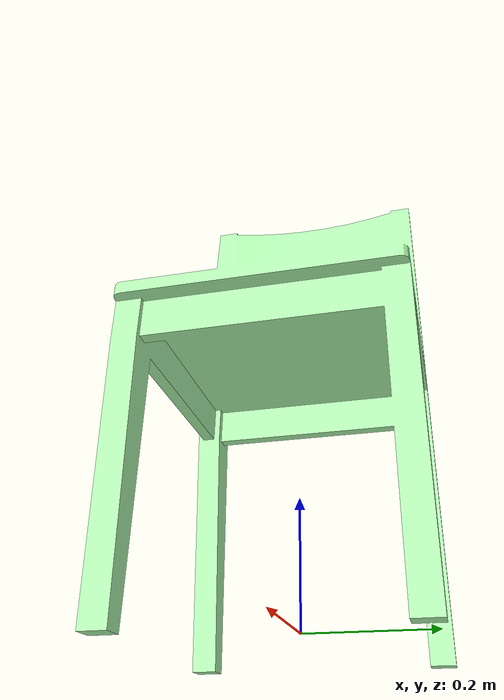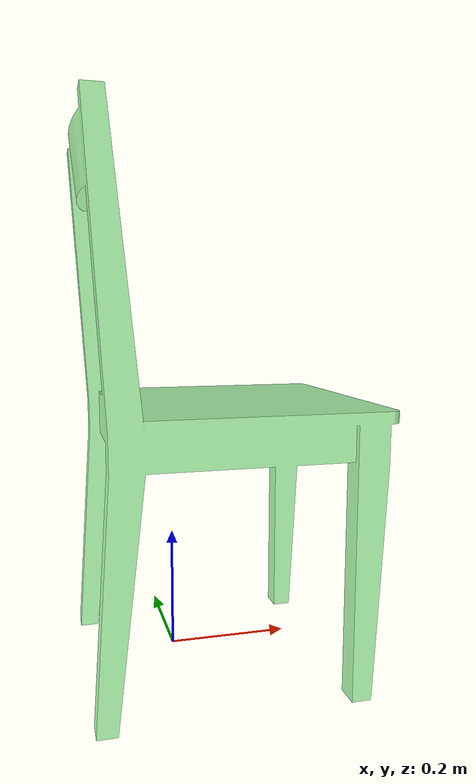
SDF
<?xml version='1.0'?>
<sdf version='1.6'>
  <model name='rai_chair'>
    <link name='link_2'>
      <pose frame=''>0 0 0 0 -0 0</pose>
      <visual name='visual'>
        <pose frame=''>0 0.5 0 1.57 -0 0.26</pose>
        <geometry>
          <mesh>
            <uri>model://rai_chair/meshes/rai_chair.STL</uri>
            <scale>1 1 1</scale>
          </mesh>
        </geometry>
        <material>
          <lighting>1</lighting>
          <script>
            <uri>file://media/materials/scripts/gazebo.material</uri>
            <name>Gazebo/Grey</name>
          </script>
          <ambient>0 1 0.3 1</ambient>
          <diffuse>0.7 1 0.7 1</diffuse>
          <specular>0.01 0.01 0.01 1</specular>
          <emissive>0 0 0 1</emissive>
          <shader type='vertex'>
            <normal_map>__default__</normal_map>
          </shader>
        </material>
        <cast_shadows>1</cast_shadows>
        <transparency>0</transparency>
      </visual>
      <collision name='collision'>
        <pose frame=''>0 0.5 0 1.57 -0 0.26</pose>
        <geometry>
          <mesh>
            <uri>model://rai_chair/meshes/rai_chair.STL</uri>
          </mesh>
        </geometry>
      </collision>
    </link>
    <static>1</static>
    <allow_auto_disable>1</allow_auto_disable>
  </model>
</sdf>
